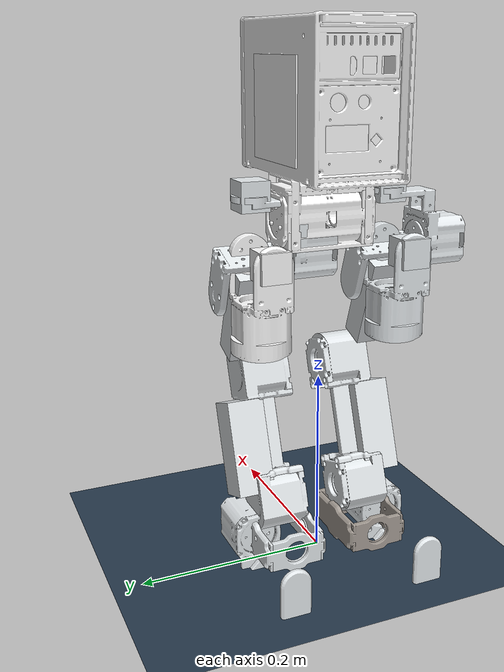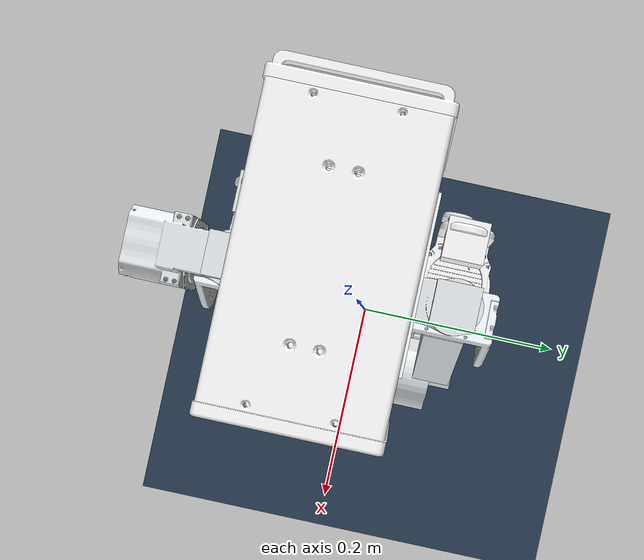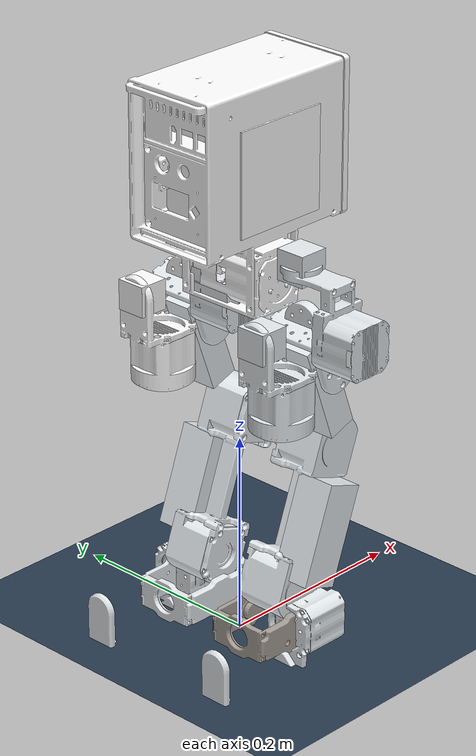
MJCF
<mujoco model="pi_12dof_release_v1">
	<compiler angle="radian" meshdir="../meshes/" eulerseq="zyx" />
	<option timestep="0.001" iterations="50" solver="PGS" gravity="0 0 -9.81">
		<flag sensornoise="enable" frictionloss="enable" />
	</option>
	<size njmax="500" nconmax="100" />
	<visual>
		<quality shadowsize="4096" />
		<map znear="0.05" />
	</visual>
	<default>
		<joint limited="true" />
		<motor ctrllimited="true" />
		<geom condim="4" contype="1" conaffinity="15" solref="0.001 2" friction="0.9 0.2 0.2" />
		<equality solref="0.001 2" />
		<default class="visualgeom">
			<geom material="visualgeom" condim="1" contype="0" conaffinity="0" />
		</default>
		<default class="visualgeom2">
			<geom material="visualgeom2" condim="1" contype="0" conaffinity="0" />
		</default>
		<default class="obstacle">
			<geom material="obstacle" condim="3" contype="1" conaffinity="15" />
		</default>
	</default>
	<asset>
		<texture type="skybox" builtin="gradient" rgb1="0.3 0.5 0.7" rgb2="0 0 0" width="512" height="512" />
		<texture name="texplane" type="2d" builtin="checker" rgb1=".2 .3 .4" rgb2=".1 0.15 0.2" width="512" height="512" mark="cross" markrgb=".8 .8 .8" />
		<texture name="texplane2" type="2d" builtin="checker" rgb1="1 0.3137 0.1843" rgb2="0.0 0.30196 0.38039" width="512" height="512" mark="cross" markrgb=".8 .8 .8" />
		<material name="matplane" reflectance="0." texture="texplane" texrepeat="1 1" texuniform="true" />
		<material name="matplane2" reflectance="0.1" texture="texplane2" texrepeat="1 1" texuniform="true" />
		<material name="obstacle" rgba="0.9 0.6 0.2 1" />
		<material name="visualgeom" rgba="0.5 0.9 0.2 1" />
		<material name="visualgeom2" rgba="0.5 0.9 0.2 1" />
		<mesh name="base_link" file="base_link.STL" />
		<mesh name="r_hip_yaw_link" file="r_hip_yaw_link.STL" />
		<mesh name="r_hip_roll_link" file="r_hip_roll_link.STL" />
		<mesh name="r_thigh_link" file="r_thigh_link.STL" />
		<mesh name="r_calf_link" file="r_calf_link.STL" />
		<mesh name="r_ankle_pitch_link" file="r_ankle_pitch_link.STL" />
		<mesh name="r_ankle_roll_link" file="r_ankle_roll_link.STL" />
		<mesh name="l_hip_yaw_link" file="l_hip_yaw_link.STL" />
		<mesh name="l_hip_roll_link" file="l_hip_roll_link.STL" />
		<mesh name="l_thigh_link" file="l_thigh_link.STL" />
		<mesh name="l_calf_link" file="l_calf_link.STL" />
		<mesh name="l_ankle_pitch_link" file="l_ankle_pitch_link.STL" />
		<mesh name="l_ankle_roll_link" file="l_ankle_roll_link.STL" />
		<hfield name="hf0" nrow="200" ncol="200" size="10 5 0.2 .1" />
	</asset>
	<worldbody>
		<light directional="true" diffuse=".4 .4 .4" specular="0.1 0.1 0.1" pos="0 0 5.0" dir="0 0 -1" castshadow="false" />
		<light directional="true" diffuse=".6 .6 .6" specular="0.2 0.2 0.2" pos="0 0 4" dir="0 0 -1" />
		<geom name="ground" type="plane" size="0 0 1" pos="0.001 0 0" quat="1 0 0 0" material="matplane" condim="1" conaffinity="15" />
		<body name="base_link" pos="0.0 0.0 0.398">
			<inertial pos="0.00242324 -5.699e-05 0.0403008" quat="0.695312 0.00968645 0.00943283 0.718581" mass="2.1609" diaginertia="0.00978249 0.00901239 0.00416199" />
			<joint type="slide" axis="1 0 0" limited="false" />
			<joint type="slide" axis="0 1 0" limited="false" />
			<joint type="slide" axis="0 0 1" limited="false" />
			<joint type="ball" limited="false" />
			<site name="imu" size="0.01" pos="0.0 0 0.0" />
			<geom type="mesh" contype="0" conaffinity="0" group="1" density="0" rgba="1 1 1 1" mesh="base_link" />
			<geom size="0.05 0.05 0.05" pos="0 0 0.08" type="box" rgba="1 1 1 1" />
			<body name="r_hip_yaw_link" pos="0 -0.075 0">
				<inertial pos="-0.0521311 0.00012202 -0.0527354" quat="0.962015 0.00675115 0.27155 0.0272313" mass="0.349538" diaginertia="0.000264257 0.000252453 0.000132199" />
				<joint name="r_hip_yaw_joint" pos="0 0 0" axis="0 0 1" range="-0.8 0.8" />
				<geom type="mesh" contype="0" conaffinity="0" group="1" density="0" rgba="0.89804 0.91765 0.92941 1" mesh="r_hip_yaw_link" />
				<geom size="0.015 0.015 0.015" type="box" rgba="0.89804 0.91765 0.92941 1" />
				<body name="r_hip_roll_link" pos="0 0 -0.059">
					<inertial pos="-0.00214086 0.00022682 -0.00016674" quat="0.502796 0.505088 -0.497459 0.494588" mass="0.674308" diaginertia="0.00101635 0.000989684 0.000316451" />
					<joint name="r_hip_roll_joint" pos="0 0 0" axis="1 0 0" range="-0.5 0.157" />
					<geom type="mesh" contype="0" conaffinity="0" group="1" density="0" rgba="0.89804 0.91765 0.92941 1" mesh="r_hip_roll_link" />
					<geom size="0.015 0.015 0.015" pos="-0.05 0 0" type="box" rgba="0.89804 0.91765 0.92941 1" />
					<body name="r_thigh_link" quat="0.984727 0 -0.174108 0">
						<inertial pos="0.00297238 -0.00090907 -0.080464" quat="0.501385 0.012222 -0.00689819 0.86511" mass="0.11783" diaginertia="0.000339454 0.000338484 2.51724e-05" />
						<joint name="r_thigh_joint" pos="0 0 0" axis="0 1 0" range="-1.2 0.6" />
						<geom type="mesh" contype="0" conaffinity="0" group="1" density="0" rgba="0.89804 0.91765 0.92941 1" mesh="r_thigh_link" />
						<geom size="0.015 0.015 0.05" pos="0 0 -0.07" type="box" rgba="0.89804 0.91765 0.92941 1" />
						<body name="r_calf_link" pos="0 0 -0.15" quat="0.939373 0 0.342898 0">
							<inertial pos="0.00199394 0 -0.0868848" quat="0.694774 0.0379399 -0.0267529 0.717728" mass="0.53091" diaginertia="0.000727466 0.000701949 0.000184555" />
							<joint name="r_calf_joint" pos="0 0 0" axis="0 1 0" range="-0.7 1.6" />
							<geom type="mesh" contype="0" conaffinity="0" group="1" density="0" rgba="0.89804 0.91765 0.92941 1" mesh="r_calf_link" />
							<geom size="0.02 0.02 0.05" pos="0 0 -0.08" type="box" rgba="0.89804 0.91765 0.92941 1" />
							<body name="r_ankle_pitch_link" pos="0 0 -0.17545" quat="0.984727 0 -0.174108 0">
								<inertial pos="0 0 0" quat="0 0.707107 0 0.707107" mass="0.0115844" diaginertia="1.21e-06 1.12e-06 4.5e-07" />
								<joint name="r_ankle_pitch_joint" pos="0 0 0" axis="0 1 0" range="-0.3 0.85" />
								<geom type="mesh" contype="0" conaffinity="0" group="1" density="0" rgba="0.65098 0.61961 0.58824 1" mesh="r_ankle_pitch_link" />
								<geom type="mesh" rgba="0.65098 0.61961 0.58824 1" mesh="r_ankle_pitch_link" />
								<body name="r_ankle_roll_link">
									<inertial pos="0.016631 -2.06e-06 -0.021104" quat="8.74606e-05 0.728576 0.000120919 0.684965" mass="0.26606" diaginertia="0.000460774 0.00039542 0.000101916" />
									<joint name="r_ankle_roll_joint" pos="0 0 0" axis="1 0 0" range="-0.25 0.7" />
									<geom type="mesh" contype="0" conaffinity="0" group="1" density="0" rgba="0.89804 0.91765 0.92941 1" mesh="r_ankle_roll_link" />
									<geom type="mesh" rgba="0.89804 0.91765 0.92941 1" mesh="r_ankle_roll_link" />
								</body>
							</body>
						</body>
					</body>
				</body>
			</body>
			<body name="l_hip_yaw_link" pos="0 0.075 0">
				<inertial pos="-0.0528778 -6.958e-05 -0.0528816" quat="0.964808 -0.00229227 0.262686 -0.011681" mass="0.349538" diaginertia="0.00026833 0.00025056 0.000131309" />
				<joint name="l_hip_yaw_joint" pos="0 0 0" axis="0 0 1" range="-0.8 0.8" />
				<geom type="mesh" contype="0" conaffinity="0" group="1" density="0" rgba="0.89804 0.91765 0.92941 1" mesh="l_hip_yaw_link" />
				<geom size="0.015 0.015 0.015" type="box" rgba="0.89804 0.91765 0.92941 1" />
				<body name="l_hip_roll_link" pos="0 0 -0.059">
					<inertial pos="-0.00198932 -0.00022682 -0.00016674" quat="0.504524 0.503309 -0.495176 0.496928" mass="0.674308" diaginertia="0.00104453 0.00101902 0.000325583" />
					<joint name="l_hip_roll_joint" pos="0 0 0" axis="1 0 0" range="-0.157 0.5" />
					<geom type="mesh" contype="0" conaffinity="0" group="1" density="0" rgba="1 1 1 1" mesh="l_hip_roll_link" />
					<geom size="0.015 0.015 0.015" pos="-0.05 0 0" type="box" rgba="1 1 1 1" />
					<body name="l_thigh_link" quat="0.984727 0 -0.174108 0">
						<inertial pos="0.00290507 0.00062807 -0.0786419" quat="0.83078 -0.00297303 0.00895681 0.55652" mass="0.12056" diaginertia="0.000357584 0.000356824 2.6282e-05" />
						<joint name="l_thigh_joint" pos="0 0 0" axis="0 1 0" range="-1.2 0.6" />
						<geom type="mesh" contype="0" conaffinity="0" group="1" density="0" rgba="0.89804 0.91765 0.92941 1" mesh="l_thigh_link" />
						<geom size="0.015 0.015 0.05" pos="0 0 -0.07" type="box" rgba="0.89804 0.91765 0.92941 1" />
						<body name="l_calf_link" pos="0 0 -0.15" quat="0.939373 0 0.342898 0">
							<inertial pos="0.00199394 0 -0.0868848" quat="0.717484 -0.022377 0.0339637 0.695387" mass="0.53091" diaginertia="0.000689511 0.000666148 0.000149971" />
							<joint name="l_calf_joint" pos="0 0 0" axis="0 1 0" range="-0.7 1.6" />
							<geom type="mesh" contype="0" conaffinity="0" group="1" density="0" rgba="0.89804 0.91765 0.92941 1" mesh="l_calf_link" />
							<geom size="0.02 0.02 0.05" pos="0 0 -0.08" type="box" rgba="0.89804 0.91765 0.92941 1" />
							<body name="l_ankle_pitch_link" pos="0 0 -0.17545" quat="0.984727 0 -0.174108 0">
								<inertial pos="0 0 0" quat="0 0.707107 0 0.707107" mass="0.0115844" diaginertia="1.21e-06 1.12e-06 4.5e-07" />
								<joint name="l_ankle_pitch_joint" pos="0 0 0" axis="0 1 0" range="-0.3 0.85" />
								<geom type="mesh" contype="0" conaffinity="0" group="1" density="0" rgba="0.89804 0.91765 0.92941 1" mesh="l_ankle_pitch_link" />
								<geom type="mesh" rgba="0.89804 0.91765 0.92941 1" mesh="l_ankle_pitch_link" />
								<body name="l_ankle_roll_link">
									<inertial pos="0.016631 -2.06e-06 -0.021104" quat="-0.000101875 0.726707 -0.000110593 0.686947" mass="0.26319" diaginertia="0.000457156 0.00039075 0.000100764" />
									<joint name="l_ankle_roll_joint" pos="0 0 0" axis="1 0 0" range="-0.7 0.25" />
									<geom type="mesh" contype="0" conaffinity="0" group="1" density="0" rgba="0.89804 0.91765 0.92941 1" mesh="l_ankle_roll_link" />
									<geom type="mesh" rgba="0.89804 0.91765 0.92941 1" mesh="l_ankle_roll_link" />
								</body>
							</body>
						</body>
					</body>
				</body>
			</body>
		</body>
	</worldbody>
	<actuator>
		<motor name="r_hip_yaw_joint" joint="r_hip_yaw_joint" gear="1" ctrllimited="true" ctrlrange="-200 200" />
		<motor name="r_hip_roll_joint" joint="r_hip_roll_joint" gear="1" ctrllimited="true" ctrlrange="-200 200" />
		<motor name="r_thigh_joint" joint="r_thigh_joint" gear="1" ctrllimited="true" ctrlrange="-200 200" />
		<motor name="r_calf_joint" joint="r_calf_joint" gear="1" ctrllimited="true" ctrlrange="-200 200" />
		<motor name="r_ankle_pitch_joint" joint="r_ankle_pitch_joint" gear="1" ctrllimited="true" ctrlrange="-200 200" />
		<motor name="r_ankle_roll_joint" joint="r_ankle_roll_joint" gear="1" ctrllimited="true" ctrlrange="-200 200" />
		<motor name="l_hip_yaw_joint" joint="l_hip_yaw_joint" gear="1" ctrllimited="true" ctrlrange="-200 200" />
		<motor name="l_hip_roll_joint" joint="l_hip_roll_joint" gear="1" ctrllimited="true" ctrlrange="-200 200" />
		<motor name="l_thigh_joint" joint="l_thigh_joint" gear="1" ctrllimited="true" ctrlrange="-200 200" />
		<motor name="l_calf_joint" joint="l_calf_joint" gear="1" ctrllimited="true" ctrlrange="-200 200" />
		<motor name="l_ankle_pitch_joint" joint="l_ankle_pitch_joint" gear="1" ctrllimited="true" ctrlrange="-200 200" />
		<motor name="l_ankle_roll_joint" joint="l_ankle_roll_joint" gear="1" ctrllimited="true" ctrlrange="-200 200" />
	</actuator>
	<sensor>
		<!-- Position sensors -->
		<actuatorpos name="r_hip_yaw_joint_p" actuator="r_hip_yaw_joint" user="13" />
		<actuatorpos name="r_hip_roll_joint_p" actuator="r_hip_roll_joint" user="13" />
		<actuatorpos name="r_thigh_joint_p" actuator="r_thigh_joint" user="13" />
		<actuatorpos name="r_calf_joint_p" actuator="r_calf_joint" user="13" />
		<actuatorpos name="r_ankle_pitch_joint_p" actuator="r_ankle_pitch_joint" user="13" />
		<actuatorpos name="r_ankle_roll_joint_p" actuator="r_ankle_roll_joint" user="13" />
		<actuatorpos name="l_hip_yaw_joint_p" actuator="l_hip_yaw_joint" user="13" />
		<actuatorpos name="l_hip_roll_joint_p" actuator="l_hip_roll_joint" user="13" />
		<actuatorpos name="l_thigh_joint_p" actuator="l_thigh_joint" user="13" />
		<actuatorpos name="l_calf_joint_p" actuator="l_calf_joint" user="13" />
		<actuatorpos name="l_ankle_pitch_joint_p" actuator="l_ankle_pitch_joint" user="13" />
		<actuatorpos name="l_ankle_roll_joint_p" actuator="l_ankle_roll_joint" user="13" />
		<!-- Velocity sensors -->
		<actuatorvel name="r_hip_yaw_joint_v" actuator="r_hip_yaw_joint" user="13" noise="1e-3" />
		<actuatorvel name="r_hip_roll_joint_v" actuator="r_hip_roll_joint" user="13" noise="1e-3" />
		<actuatorvel name="r_thigh_joint_v" actuator="r_thigh_joint" user="13" noise="1e-3" />
		<actuatorvel name="r_calf_joint_v" actuator="r_calf_joint" user="13" noise="1e-3" />
		<actuatorvel name="r_ankle_pitch_joint_v" actuator="r_ankle_pitch_joint" user="13" noise="1e-3" />
		<actuatorvel name="r_ankle_roll_joint_v" actuator="r_ankle_roll_joint" user="13" noise="1e-3" />
		<actuatorvel name="l_hip_yaw_joint_v" actuator="l_hip_yaw_joint" user="13" noise="1e-3" />
		<actuatorvel name="l_hip_roll_joint_v" actuator="l_hip_roll_joint" user="13" noise="1e-3" />
		<actuatorvel name="l_thigh_joint_v" actuator="l_thigh_joint" user="13" noise="1e-3" />
		<actuatorvel name="l_calf_joint_v" actuator="l_calf_joint" user="13" noise="1e-3" />
		<actuatorvel name="l_ankle_pitch_joint_v" actuator="l_ankle_pitch_joint" user="13" noise="1e-3" />
		<actuatorvel name="l_ankle_roll_joint_v" actuator="l_ankle_roll_joint" user="13" noise="1e-3" />
		<!-- Force sensors -->
		<actuatorfrc name="r_hip_yaw_joint_f" actuator="r_hip_yaw_joint" user="13" noise="1e-3" />
		<actuatorfrc name="r_hip_roll_joint_f" actuator="r_hip_roll_joint" user="13" noise="1e-3" />
		<actuatorfrc name="r_thigh_joint_f" actuator="r_thigh_joint" user="13" noise="1e-3" />
		<actuatorfrc name="r_calf_joint_f" actuator="r_calf_joint" user="13" noise="1e-3" />
		<actuatorfrc name="r_ankle_pitch_joint_f" actuator="r_ankle_pitch_joint" user="13" noise="1e-3" />
		<actuatorfrc name="r_ankle_roll_joint_f" actuator="r_ankle_roll_joint" user="13" noise="1e-3" />
		<actuatorfrc name="l_hip_yaw_joint_f" actuator="l_hip_yaw_joint" user="13" noise="1e-3" />
		<actuatorfrc name="l_hip_roll_joint_f" actuator="l_hip_roll_joint" user="13" noise="1e-3" />
		<actuatorfrc name="l_thigh_joint_f" actuator="l_thigh_joint" user="13" noise="1e-3" />
		<actuatorfrc name="l_calf_joint_f" actuator="l_calf_joint" user="13" noise="1e-3" />
		<actuatorfrc name="l_ankle_pitch_joint_f" actuator="l_ankle_pitch_joint" user="13" noise="1e-3" />
		<actuatorfrc name="l_ankle_roll_joint_f" actuator="l_ankle_roll_joint" user="13" noise="1e-3" />
		<framequat name="orientation" objtype="site" noise="0.001" objname="imu" />
		<framepos name="position" objtype="site" noise="0.001" objname="imu" />
		<gyro name="angular-velocity" site="imu" noise="0.005" cutoff="34.9" />
		<velocimeter name="linear-velocity" site="imu" noise="0.001" cutoff="30" />
		<accelerometer name="linear-acceleration" site="imu" noise="0.005" cutoff="157" />
		<magnetometer name="magnetometer" site="imu" />
	</sensor>
</mujoco>
